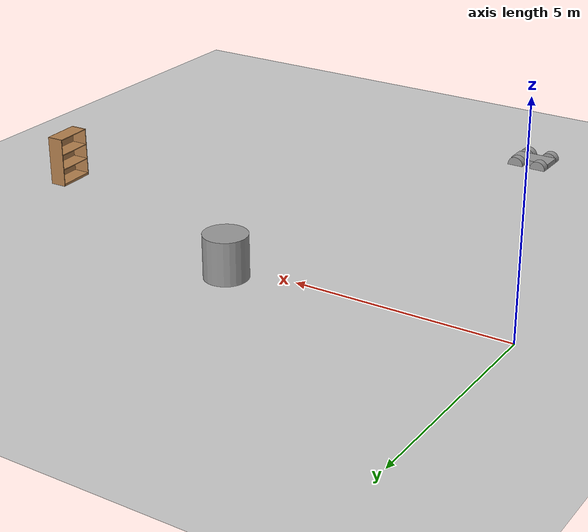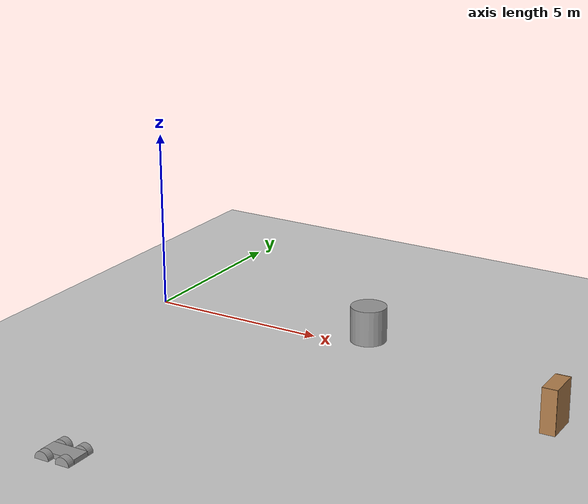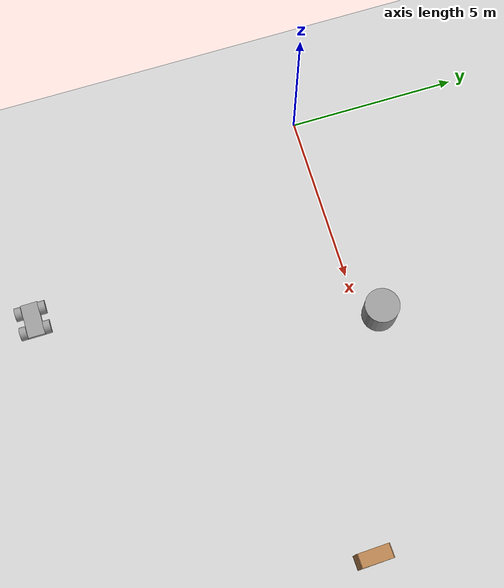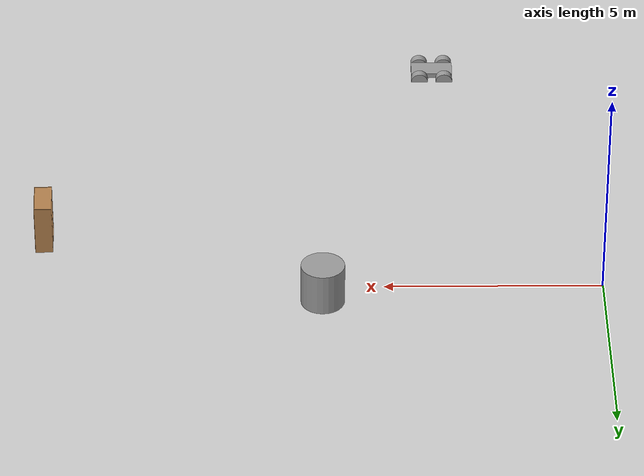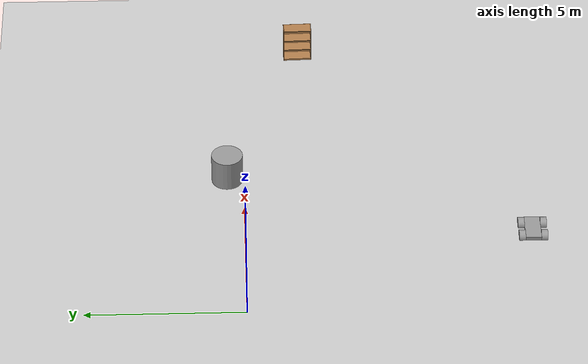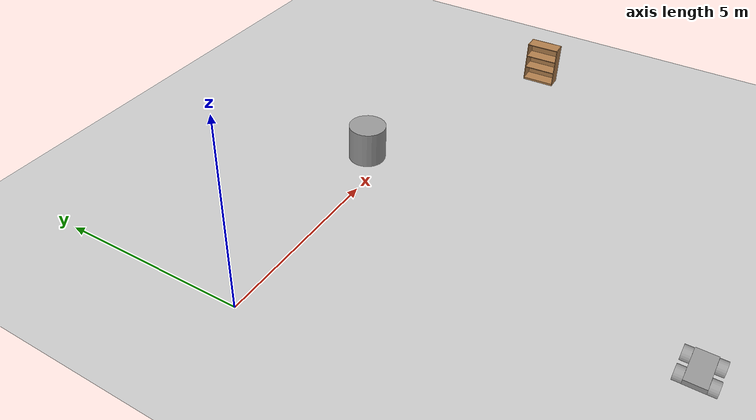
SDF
<sdf version="1.7">
 <world name="default">
  <model name="ground_plane">
   <static>1</static>
   <link name="link">
    <collision name="collision">
     <geometry><plane><normal>0 0 1</normal><size>100 100</size></plane></geometry>
     <surface>
      <contact><collide_bitmask>65535</collide_bitmask></contact>
      <friction><ode><mu>100</mu><mu2>50</mu2></ode></friction>
     </surface>
    </collision>
    <visual name="visual">
     <cast_shadows>0</cast_shadows>
     <geometry><plane><normal>0 0 1</normal><size>100 100</size></plane></geometry>
     <material>
      <script><uri>file://media/materials/scripts/gazebo.material</uri><name>Gazebo/Grey</name></script>
     </material>
    </visual>
   </link>
  </model>
  <model name="unit_cylinder">
   <pose>6.39515 0.543727 0.5 0 -0 0</pose>
   <link name="link">
    <inertial>
     <mass>1</mass>
     <inertia><ixx>0.145833</ixx><ixy>0</ixy><ixz>0</ixz><iyy>0.145833</iyy><iyz>0</iyz><izz>0.125</izz></inertia>
    </inertial>
    <collision name="collision">
     <geometry><cylinder><radius>0.5</radius><length>1</length></cylinder></geometry>
    </collision>
    <visual name="visual">
     <geometry><cylinder><radius>0.5</radius><length>1</length></cylinder></geometry>
     <material>
      <script><name>Gazebo/Grey</name><uri>file://media/materials/scripts/gazebo.material</uri></script>
     </material>
    </visual>
   </link>
  </model>
  <model name="bookshelf_clone_0_clone_clone_0">
   <static>1</static>
   <link name="link">
    <inertial><mass>1</mass></inertial>
    <collision name="back">
     <pose>0 0.005 0.6 0 -0 0</pose>
     <geometry><box><size>0.9 0.01 1.2</size></box></geometry>
    </collision>
    <visual name="visual1">
     <pose>0 0.005 0.6 0 -0 0</pose>
     <geometry><box><size>0.9 0.01 1.2</size></box></geometry>
     <material>
      <script><uri>file://media/materials/scripts/gazebo.material</uri><name>Gazebo/Wood</name></script>
     </material>
    </visual>
    <collision name="left_side">
     <pose>0.45 -0.195 0.6 0 -0 0</pose>
     <geometry><box><size>0.02 0.4 1.2</size></box></geometry>
    </collision>
    <visual name="visual2">
     <pose>0.45 -0.195 0.6 0 -0 0</pose>
     <geometry><box><size>0.02 0.4 1.2</size></box></geometry>
     <material>
      <script><uri>file://media/materials/scripts/gazebo.material</uri><name>Gazebo/Wood</name></script>
     </material>
    </visual>
    <collision name="right_side">
     <pose>-0.45 -0.195 0.6 0 -0 0</pose>
     <geometry><box><size>0.02 0.4 1.2</size></box></geometry>
    </collision>
    <visual name="visual3">
     <pose>-0.45 -0.195 0.6 0 -0 0</pose>
     <geometry><box><size>0.02 0.4 1.2</size></box></geometry>
     <material>
      <script><uri>file://media/materials/scripts/gazebo.material</uri><name>Gazebo/Wood</name></script>
     </material>
    </visual>
    <collision name="bottom">
     <pose>0 -0.195 0.03 0 -0 0</pose>
     <geometry><box><size>0.88 0.4 0.06</size></box></geometry>
    </collision>
    <visual name="visual4">
     <pose>0 -0.195 0.03 0 -0 0</pose>
     <geometry><box><size>0.88 0.4 0.06</size></box></geometry>
     <material>
      <script><uri>file://media/materials/scripts/gazebo.material</uri><name>Gazebo/Wood</name></script>
     </material>
    </visual>
    <collision name="top">
     <pose>0 -0.195 1.19 0 -0 0</pose>
     <geometry><box><size>0.88 0.4 0.02</size></box></geometry>
    </collision>
    <visual name="visual5">
     <pose>0 -0.195 1.19 0 -0 0</pose>
     <geometry><box><size>0.88 0.4 0.02</size></box></geometry>
     <material>
      <script><uri>file://media/materials/scripts/gazebo.material</uri><name>Gazebo/Wood</name></script>
     </material>
    </visual>
    <collision name="low_shelf">
     <pose>0 -0.195 0.43 0 -0 0</pose>
     <geometry><box><size>0.88 0.4 0.02</size></box></geometry>
    </collision>
    <visual name="visual6">
     <pose>0 -0.195 0.43 0 -0 0</pose>
     <geometry><box><size>0.88 0.4 0.02</size></box></geometry>
     <material>
      <script><uri>file://media/materials/scripts/gazebo.material</uri><name>Gazebo/Wood</name></script>
     </material>
    </visual>
    <collision name="high_shelf">
     <pose>0 -0.195 0.8 0 -0 0</pose>
     <geometry><box><size>0.88 0.4 0.02</size></box></geometry>
    </collision>
    <visual name="visual7">
     <pose>0 -0.195 0.8 0 -0 0</pose>
     <geometry><box><size>0.88 0.4 0.02</size></box></geometry>
     <material>
      <script><uri>file://media/materials/scripts/gazebo.material</uri><name>Gazebo/Wood</name></script>
     </material>
    </visual>
   </link>
   <pose>13.0181 -1.85413 0 0 0 -1.53774</pose>
  </model>
  <model name="AGV_0">
   <link name="link_0">
    <inertial>
     <mass>0.165304</mass>
     <inertia>
      <ixx>0.00689409</ixx>
      <ixy>0</ixy>
      <ixz>0</ixz>
      <iyy>0.0137549</iyy>
      <iyz>0</iyz>
      <izz>0.018778</izz>
     </inertia>
    </inertial>
    <pose>0 0 -0.008 0 -0 0</pose>
    <visual name="visual">
     <geometry><box><size>1 0.5 0.24</size></box></geometry>
     <material>
      <lighting>1</lighting>
      <script><uri>file://media/materials/scripts/gazebo.material</uri><name>Gazebo/Grey</name></script>
      <shader type="pixel"><normal_map>__default__</normal_map></shader>
      <ambient>0.3 0.3 0.3 1</ambient>
      <diffuse>0.7 0.7 0.7 1</diffuse>
      <specular>0.01 0.01 0.01 1</specular>
      <emissive>0 0 0 1</emissive>
     </material>
    </visual>
    <collision name="collision">
     <geometry><box><size>1 0.5 0.24</size></box></geometry>
     <surface>
      <friction>
       <ode><mu>1</mu><mu2>1</mu2><fdir1>0 0 0</fdir1><slip1>0</slip1><slip2>0</slip2></ode>
       <torsional>
        <coefficient>1</coefficient>
        <patch_radius>0</patch_radius>
        <surface_radius>0</surface_radius>
        <use_patch_radius>1</use_patch_radius>
        <ode><slip>0</slip></ode>
       </torsional>
      </friction>
      <bounce><restitution_coefficient>0</restitution_coefficient><threshold>1e+06</threshold></bounce>
      <contact>
       <collide_without_contact>0</collide_without_contact>
       <collide_without_contact_bitmask>1</collide_without_contact_bitmask>
       <collide_bitmask>1</collide_bitmask>
       <ode>
        <soft_cfm>0</soft_cfm>
        <soft_erp>0.2</soft_erp>
        <kp>1e+13</kp>
        <kd>1</kd>
        <max_vel>0.01</max_vel>
        <min_depth>0</min_depth>
       </ode>
       <bullet>
        <split_impulse>1</split_impulse>
        <split_impulse_penetration_threshold>-0.01</split_impulse_penetration_threshold>
        <soft_cfm>0</soft_cfm>
        <soft_erp>0.2</soft_erp>
        <kp>1e+13</kp>
        <kd>1</kd>
       </bullet>
      </contact>
     </surface>
    </collision>
   </link>
   <link name="link_1_clone_0">
    <inertial>
     <mass>1</mass>
     <inertia><ixx>0.145833</ixx><ixy>0</ixy><ixz>0</ixz><iyy>0.145833</iyy><iyz>0</iyz><izz>0.125</izz></inertia>
    </inertial>
    <pose>0.3 0.350019 0.002 1.5707 -0 0</pose>
    <visual name="visual">
     <geometry><cylinder><radius>0.2</radius><length>0.2</length></cylinder></geometry>
     <material>
      <lighting>1</lighting>
      <script><uri>file://media/materials/scripts/gazebo.material</uri><name>Gazebo/Grey</name></script>
      <shader type="pixel"><normal_map>__default__</normal_map></shader>
      <ambient>0.3 0.3 0.3 1</ambient>
      <diffuse>0.7 0.7 0.7 1</diffuse>
      <specular>0.01 0.01 0.01 1</specular>
      <emissive>0 0 0 1</emissive>
     </material>
    </visual>
    <collision name="collision">
     <geometry><cylinder><radius>0.2</radius><length>0.2</length></cylinder></geometry>
     <surface>
      <friction>
       <ode><mu>1</mu><mu2>1</mu2><fdir1>0 0 0</fdir1><slip1>0</slip1><slip2>0</slip2></ode>
       <torsional>
        <coefficient>1</coefficient>
        <patch_radius>0</patch_radius>
        <surface_radius>0</surface_radius>
        <use_patch_radius>1</use_patch_radius>
        <ode><slip>0</slip></ode>
       </torsional>
      </friction>
      <bounce><restitution_coefficient>0</restitution_coefficient><threshold>1e+06</threshold></bounce>
      <contact>
       <collide_without_contact>0</collide_without_contact>
       <collide_without_contact_bitmask>1</collide_without_contact_bitmask>
       <collide_bitmask>1</collide_bitmask>
       <ode>
        <soft_cfm>0</soft_cfm>
        <soft_erp>0.2</soft_erp>
        <kp>1e+13</kp>
        <kd>1</kd>
        <max_vel>0.01</max_vel>
        <min_depth>0</min_depth>
       </ode>
       <bullet>
        <split_impulse>1</split_impulse>
        <split_impulse_penetration_threshold>-0.01</split_impulse_penetration_threshold>
        <soft_cfm>0</soft_cfm>
        <soft_erp>0.2</soft_erp>
        <kp>1e+13</kp>
        <kd>1</kd>
       </bullet>
      </contact>
     </surface>
    </collision>
   </link>
   <link name="link_1_clone_0_clone">
    <inertial>
     <mass>1</mass>
     <inertia><ixx>0.145833</ixx><ixy>0</ixy><ixz>0</ixz><iyy>0.145833</iyy><iyz>0</iyz><izz>0.125</izz></inertia>
    </inertial>
    <pose>-0.3 -0.350019 0.002 1.5707 -0 0</pose>
    <visual name="visual">
     <geometry><cylinder><radius>0.2</radius><length>0.2</length></cylinder></geometry>
     <material>
      <lighting>1</lighting>
      <script><uri>file://media/materials/scripts/gazebo.material</uri><name>Gazebo/Grey</name></script>
      <shader type="pixel"><normal_map>__default__</normal_map></shader>
      <ambient>0.3 0.3 0.3 1</ambient>
      <diffuse>0.7 0.7 0.7 1</diffuse>
      <specular>0.01 0.01 0.01 1</specular>
      <emissive>0 0 0 1</emissive>
     </material>
    </visual>
    <collision name="collision">
     <geometry><cylinder><radius>0.2</radius><length>0.2</length></cylinder></geometry>
     <surface>
      <friction>
       <ode><mu>1</mu><mu2>1</mu2><fdir1>0 0 0</fdir1><slip1>0</slip1><slip2>0</slip2></ode>
       <torsional>
        <coefficient>1</coefficient>
        <patch_radius>0</patch_radius>
        <surface_radius>0</surface_radius>
        <use_patch_radius>1</use_patch_radius>
        <ode><slip>0</slip></ode>
       </torsional>
      </friction>
      <bounce><restitution_coefficient>0</restitution_coefficient><threshold>1e+06</threshold></bounce>
      <contact>
       <collide_without_contact>0</collide_without_contact>
       <collide_without_contact_bitmask>1</collide_without_contact_bitmask>
       <collide_bitmask>1</collide_bitmask>
       <ode>
        <soft_cfm>0</soft_cfm>
        <soft_erp>0.2</soft_erp>
        <kp>1e+13</kp>
        <kd>1</kd>
        <max_vel>0.01</max_vel>
        <min_depth>0</min_depth>
       </ode>
       <bullet>
        <split_impulse>1</split_impulse>
        <split_impulse_penetration_threshold>-0.01</split_impulse_penetration_threshold>
        <soft_cfm>0</soft_cfm>
        <soft_erp>0.2</soft_erp>
        <kp>1e+13</kp>
        <kd>1</kd>
       </bullet>
      </contact>
     </surface>
    </collision>
   </link>
   <link name="link_1_clone_0_clone_0">
    <inertial>
     <mass>1</mass>
     <inertia><ixx>0.145833</ixx><ixy>0</ixy><ixz>0</ixz><iyy>0.145833</iyy><iyz>0</iyz><izz>0.125</izz></inertia>
    </inertial>
    <pose>0.3 -0.350019 0.002 1.5707 -0 0</pose>
    <visual name="visual">
     <geometry><cylinder><radius>0.2</radius><length>0.2</length></cylinder></geometry>
     <material>
      <lighting>1</lighting>
      <script><uri>file://media/materials/scripts/gazebo.material</uri><name>Gazebo/Grey</name></script>
      <shader type="pixel"><normal_map>__default__</normal_map></shader>
      <ambient>0.3 0.3 0.3 1</ambient>
      <diffuse>0.7 0.7 0.7 1</diffuse>
      <specular>0.01 0.01 0.01 1</specular>
      <emissive>0 0 0 1</emissive>
     </material>
    </visual>
    <collision name="collision">
     <geometry><cylinder><radius>0.2</radius><length>0.2</length></cylinder></geometry>
     <surface>
      <friction>
       <ode><mu>1</mu><mu2>1</mu2><fdir1>0 0 0</fdir1><slip1>0</slip1><slip2>0</slip2></ode>
       <torsional>
        <coefficient>1</coefficient>
        <patch_radius>0</patch_radius>
        <surface_radius>0</surface_radius>
        <use_patch_radius>1</use_patch_radius>
        <ode><slip>0</slip></ode>
       </torsional>
      </friction>
      <bounce><restitution_coefficient>0</restitution_coefficient><threshold>1e+06</threshold></bounce>
      <contact>
       <collide_without_contact>0</collide_without_contact>
       <collide_without_contact_bitmask>1</collide_without_contact_bitmask>
       <collide_bitmask>1</collide_bitmask>
       <ode>
        <soft_cfm>0</soft_cfm>
        <soft_erp>0.2</soft_erp>
        <kp>1e+13</kp>
        <kd>1</kd>
        <max_vel>0.01</max_vel>
        <min_depth>0</min_depth>
       </ode>
       <bullet>
        <split_impulse>1</split_impulse>
        <split_impulse_penetration_threshold>-0.01</split_impulse_penetration_threshold>
        <soft_cfm>0</soft_cfm>
        <soft_erp>0.2</soft_erp>
        <kp>1e+13</kp>
        <kd>1</kd>
       </bullet>
      </contact>
     </surface>
    </collision>
   </link>
   <link name="link_1_clone_1">
    <inertial>
     <mass>1</mass>
     <inertia><ixx>0.145833</ixx><ixy>0</ixy><ixz>0</ixz><iyy>0.145833</iyy><iyz>0</iyz><izz>0.125</izz></inertia>
    </inertial>
    <pose>-0.3 0.350019 0.002 1.5707 -0 0</pose>
    <visual name="visual">
     <geometry><cylinder><radius>0.2</radius><length>0.2</length></cylinder></geometry>
     <material>
      <lighting>1</lighting>
      <script><uri>file://media/materials/scripts/gazebo.material</uri><name>Gazebo/Grey</name></script>
      <shader type="pixel"><normal_map>__default__</normal_map></shader>
      <ambient>0.3 0.3 0.3 1</ambient>
      <diffuse>0.7 0.7 0.7 1</diffuse>
      <specular>0.01 0.01 0.01 1</specular>
      <emissive>0 0 0 1</emissive>
     </material>
    </visual>
    <collision name="collision">
     <geometry><cylinder><radius>0.2</radius><length>0.2</length></cylinder></geometry>
     <surface>
      <friction>
       <ode><mu>1</mu><mu2>1</mu2><fdir1>0 0 0</fdir1><slip1>0</slip1><slip2>0</slip2></ode>
       <torsional>
        <coefficient>1</coefficient>
        <patch_radius>0</patch_radius>
        <surface_radius>0</surface_radius>
        <use_patch_radius>1</use_patch_radius>
        <ode><slip>0</slip></ode>
       </torsional>
      </friction>
      <bounce><restitution_coefficient>0</restitution_coefficient><threshold>1e+06</threshold></bounce>
      <contact>
       <collide_without_contact>0</collide_without_contact>
       <collide_without_contact_bitmask>1</collide_without_contact_bitmask>
       <collide_bitmask>1</collide_bitmask>
       <ode>
        <soft_cfm>0</soft_cfm>
        <soft_erp>0.2</soft_erp>
        <kp>1e+13</kp>
        <kd>1</kd>
        <max_vel>0.01</max_vel>
        <min_depth>0</min_depth>
       </ode>
       <bullet>
        <split_impulse>1</split_impulse>
        <split_impulse_penetration_threshold>-0.01</split_impulse_penetration_threshold>
        <soft_cfm>0</soft_cfm>
        <soft_erp>0.2</soft_erp>
        <kp>1e+13</kp>
        <kd>1</kd>
       </bullet>
      </contact>
     </surface>
    </collision>
   </link>
   <joint name="link_0_JOINT_2" type="revolute">
    <parent>link_0</parent>
    <child>link_1_clone_0_clone_0</child>
    <axis>
     <xyz>0 0 1</xyz>
     <limit>
      <lower>-1.79769e+308</lower>
      <upper>1.79769e+308</upper>
      <effort>-1</effort>
      <velocity>-1</velocity>
     </limit>
     <dynamics>
      <spring_reference>0</spring_reference>
      <spring_stiffness>0</spring_stiffness>
      <damping>0</damping>
     </dynamics>
    </axis>
    <physics>
     <ode><limit><cfm>0</cfm><erp>0.2</erp></limit><suspension><cfm>0</cfm><erp>0.2</erp></suspension></ode>
    </physics>
   </joint>
   <joint name="link_0_JOINT_3" type="revolute">
    <parent>link_0</parent>
    <child>link_1_clone_0_clone</child>
    <axis>
     <xyz>0 0 1</xyz>
     <limit>
      <lower>-1.79769e+308</lower>
      <upper>1.79769e+308</upper>
      <effort>-1</effort>
      <velocity>-1</velocity>
     </limit>
     <dynamics>
      <spring_reference>0</spring_reference>
      <spring_stiffness>0</spring_stiffness>
      <damping>0</damping>
     </dynamics>
    </axis>
    <physics>
     <ode><limit><cfm>0</cfm><erp>0.2</erp></limit><suspension><cfm>0</cfm><erp>0.2</erp></suspension></ode>
    </physics>
   </joint>
   <joint name="link_0_JOINT_4" type="revolute">
    <parent>link_0</parent>
    <child>link_1_clone_0</child>
    <axis>
     <xyz>0 0 1</xyz>
     <limit>
      <lower>-1.79769e+308</lower>
      <upper>1.79769e+308</upper>
      <effort>-1</effort>
      <velocity>-1</velocity>
     </limit>
     <dynamics>
      <spring_reference>0</spring_reference>
      <spring_stiffness>0</spring_stiffness>
      <damping>0</damping>
     </dynamics>
    </axis>
    <physics>
     <ode><limit><cfm>0</cfm><erp>0.2</erp></limit><suspension><cfm>0</cfm><erp>0.2</erp></suspension></ode>
    </physics>
   </joint>
   <joint name="link_0_JOINT_5" type="revolute">
    <parent>link_0</parent>
    <child>link_1_clone_1</child>
    <axis>
     <xyz>0 0 1</xyz>
     <limit>
      <lower>-1.79769e+308</lower>
      <upper>1.79769e+308</upper>
      <effort>-1</effort>
      <velocity>-1</velocity>
     </limit>
     <dynamics>
      <spring_reference>0</spring_reference>
      <spring_stiffness>0</spring_stiffness>
      <damping>0</damping>
     </dynamics>
    </axis>
    <physics>
     <ode><limit><cfm>0</cfm><erp>0.2</erp></limit><suspension><cfm>0</cfm><erp>0.2</erp></suspension></ode>
    </physics>
   </joint>
   <static>0</static>
   <pose>3.65545 -9.03895 0 0 -0 0</pose>
  </model>
 </world>
</sdf>
